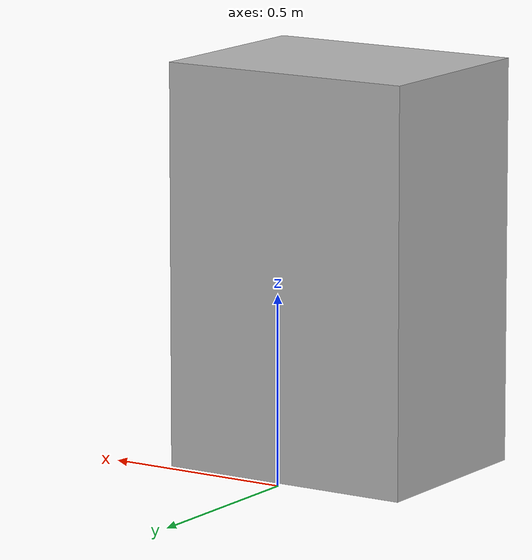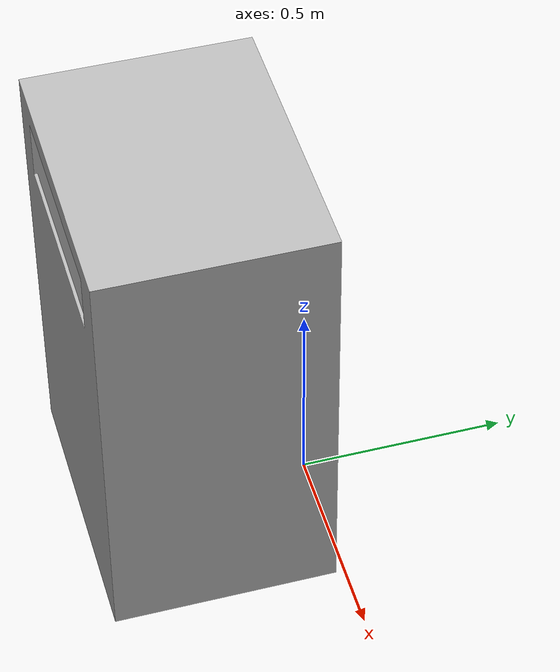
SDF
<?xml version="1.0"?>

<sdf version="1.6">
  <model name='ElectronicsRecycling'>
   <static>true</static>
    <link name="body">
      <pose>0 0 0 0 0 0</pose>

      <visual name="visual">
        <geometry>
          <mesh>
            <uri>model://ElectronicsRecycling/meshes/ElectronicsRecycling.obj</uri>
          </mesh>
        </geometry>
      </visual>

      <collision name="collision">
        <geometry>
          <mesh>
            <uri>model://ElectronicsRecycling/meshes/ElectronicsRecycling.obj</uri>
          </mesh>
        </geometry>
      </collision>

    </link>
  </model>
</sdf>
